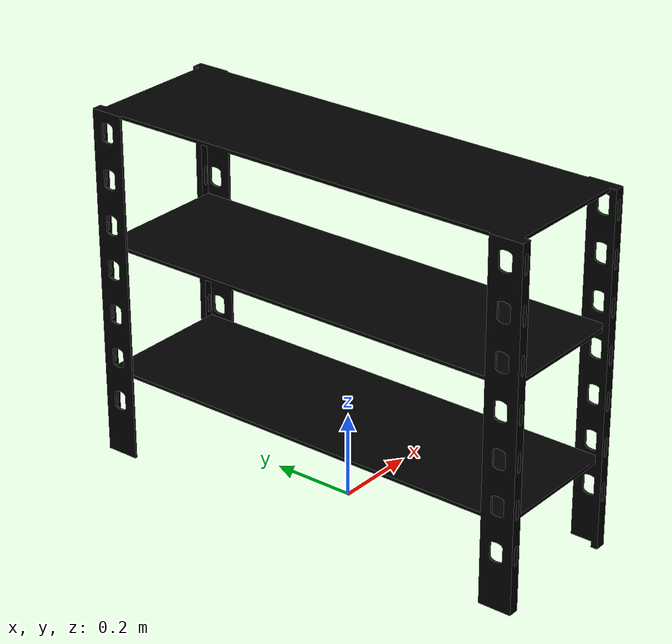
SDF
<?xml version='1.0'?>
<sdf version='1.7'>
  <model name='shelf'>
    <link name='link'>
      <inertial>
        <mass>0.1</mass>
        <inertia>
          <ixx>1</ixx>
          <ixy>0</ixy>
          <ixz>0</ixz>
          <iyy>1</iyy>
          <iyz>0</iyz>
          <izz>1</izz>
        </inertia>
        <pose>0 0 0 0 -0 0</pose>
      </inertial>
      <pose>0 0 0 0 -0 0</pose>
      <self_collide>0</self_collide>
      <enable_wind>0</enable_wind>
      <kinematic>0</kinematic>
      <gravity>1</gravity>
      <visual name='visual'>
        <pose>0 0 0 0 -0 0</pose>
        <geometry>
          <mesh>
            <uri>model://shelf/meshes/shelf.dae</uri>
            <scale>0.5 1.6 0.78</scale>
          </mesh>
        </geometry>
        <transparency>0</transparency>
        <cast_shadows>1</cast_shadows>
        <material>
          <shader type='pixel'>
            <normal_map>__default__</normal_map>
          </shader>
          <script>
            <name>ModelPreview_1::link::visual_MATERIAL_</name>
            <uri>__default__</uri>
          </script>
          <ambient>0.204 0.396 0.643 1</ambient>
          <diffuse>0 0 0 1</diffuse>
          <specular>0 0 0 1</specular>
          <emissive>0 0 0 1</emissive>
        </material>
      </visual>
      <collision name='collision'>
        <laser_retro>0</laser_retro>
        <max_contacts>10</max_contacts>
        <pose>0 0 0 0 -0 0</pose>
        <geometry>
          <mesh>
            <uri>/home/kubin/.gazebo/models/shelf/meshes/shelf.dae</uri>
            <scale>0.5 1.6 0.78</scale>
          </mesh>
        </geometry>
        <surface>
          <friction>
            <ode>
              <mu>1</mu>
              <mu2>1</mu2>
              <fdir1>0 0 0</fdir1>
              <slip1>0</slip1>
              <slip2>0</slip2>
            </ode>
            <torsional>
              <coefficient>1</coefficient>
              <patch_radius>1</patch_radius>
              <surface_radius>1</surface_radius>
              <use_patch_radius>1</use_patch_radius>
              <ode>
                <slip>0</slip>
              </ode>
            </torsional>
          </friction>
          <bounce>
            <restitution_coefficient>1</restitution_coefficient>
            <threshold>1e+06</threshold>
          </bounce>
          <contact>
            <collide_without_contact>0</collide_without_contact>
            <collide_without_contact_bitmask>1</collide_without_contact_bitmask>
            <collide_bitmask>1</collide_bitmask>
            <ode>
              <soft_cfm>0</soft_cfm>
              <soft_erp>0.2</soft_erp>
              <kp>1e+13</kp>
              <kd>1</kd>
              <max_vel>0.01</max_vel>
              <min_depth>0</min_depth>
            </ode>
            <bullet>
              <split_impulse>1</split_impulse>
              <split_impulse_penetration_threshold>-0.01</split_impulse_penetration_threshold>
              <soft_cfm>0</soft_cfm>
              <soft_erp>0.2</soft_erp>
              <kp>1e+13</kp>
              <kd>1</kd>
            </bullet>
          </contact>
        </surface>
      </collision>
    </link>
    <static>0</static>
    <allow_auto_disable>1</allow_auto_disable>
  </model>
</sdf>
